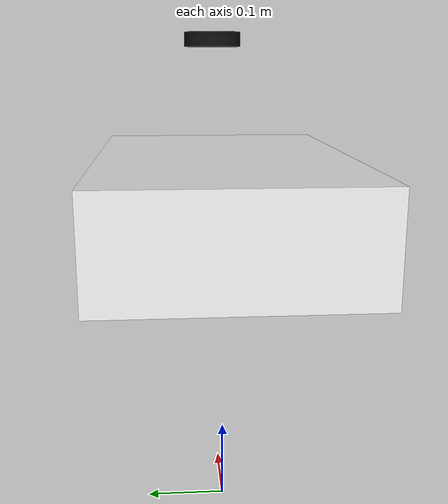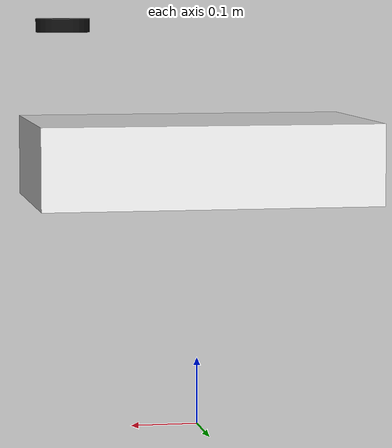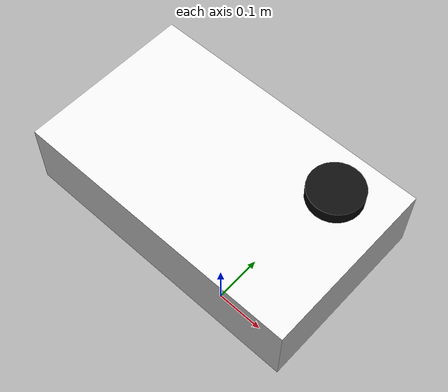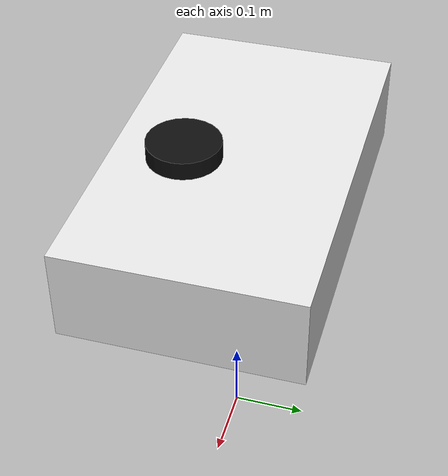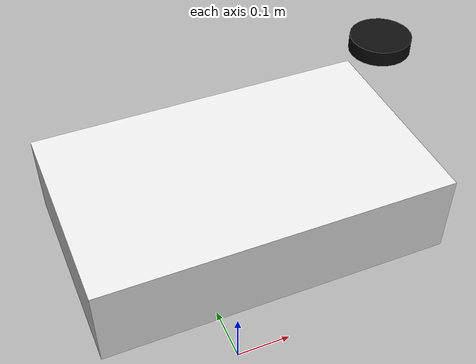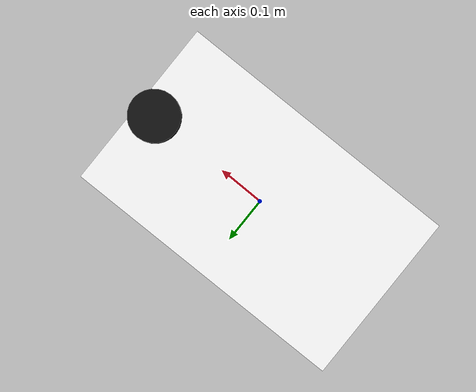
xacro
<?xml version="1.0"?>
<robot name="d1_ultra_stub" xmlns:xacro="http://www.ros.org/wiki/xacro">

  <xacro:include filename="$(find sensor_models)/urdf/l1_lidar.urdf.xacro"/>

  <!-- TODO(d1): Replace with D1 Ultra physical specs -->
  <xacro:property name="body_length"     value="0.50"/>
  <xacro:property name="body_width"      value="0.15"/>
  <xacro:property name="body_height"     value="0.12"/>
  <xacro:property name="body_mass"       value="15.0"/>
  <xacro:property name="standing_height" value="0.40"/>
  <xacro:property name="lidar_x"         value="0.20"/>
  <xacro:property name="lidar_y"         value="0.0"/>
  <xacro:property name="lidar_z"         value="0.20"/>

  <link name="base_footprint">
    <visual><geometry><box size="0.001 0.001 0.001"/></geometry></visual>
  </link>

  <joint name="base_footprint_to_base_link" type="fixed">
    <parent link="base_footprint"/>
    <child  link="base_link"/>
    <origin xyz="0 0 ${standing_height}" rpy="0 0 0"/>
  </joint>

  <link name="base_link">
    <visual>
      <geometry><box size="${body_length} ${body_width*2} ${body_height}"/></geometry>
      <material name="agibot_white"><color rgba="0.9 0.9 0.9 1.0"/></material>
    </visual>
    <collision>
      <geometry><box size="${body_length+0.05} ${body_width*2+0.1} ${body_height+0.04}"/></geometry>
    </collision>
    <inertial>
      <!-- TODO(d1): Replace with real D1 Ultra inertia tensor -->
      <origin xyz="0 0 0" rpy="0 0 0"/>
      <mass value="${body_mass}"/>
      <inertia ixx="0.1" ixy="0" ixz="0" iyy="0.3" iyz="0" izz="0.35"/>
    </inertial>
  </link>

  <joint name="base_link_to_imu" type="fixed">
    <parent link="base_link"/>
    <child  link="imu_link"/>
    <origin xyz="0 0 0" rpy="0 0 0"/>
  </joint>
  <link name="imu_link">
    <inertial><mass value="0.001"/><origin xyz="0 0 0" rpy="0 0 0"/>
      <inertia ixx="1e-7" ixy="0" ixz="0" iyy="1e-7" iyz="0" izz="1e-7"/>
    </inertial>
  </link>

  <!-- TODO(d1): Update sensor params to D1 LiDAR specs if different from L1 -->
  <xacro:l1_lidar parent="base_link" prefix="">
    <origin xyz="${lidar_x} ${lidar_y} ${lidar_z}" rpy="0 0 0"/>
  </xacro:l1_lidar>

  <gazebo reference="imu_link">
    <sensor name="d1_imu_sensor" type="imu">
      <always_on>1</always_on>
      <update_rate>200</update_rate>
      <topic>/imu/data</topic>
      <ignition_frame_id>imu_link</ignition_frame_id>
    </sensor>
  </gazebo>

</robot>

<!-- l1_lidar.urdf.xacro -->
<robot xmlns:xacro="http://www.ros.org/wiki/xacro">

  <xacro:macro name="l1_lidar" params="
      parent
      prefix
      range_min:=0.1
      range_max:=30.0
      *origin">

    <link name="${prefix}lidar_link">
      <visual>
        <origin xyz="0 0 0" rpy="0 0 0"/>
        <geometry>
          <cylinder radius="0.04" length="0.02"/>
        </geometry>
        <material name="lidar_black">
          <color rgba="0.05 0.05 0.05 1.0"/>
        </material>
      </visual>
      <collision>
        <origin xyz="0 0 0" rpy="0 0 0"/>
        <geometry>
          <cylinder radius="0.04" length="0.02"/>
        </geometry>
      </collision>
      <inertial>
        <mass value="0.5"/>
        <origin xyz="0 0 0" rpy="0 0 0"/>
        <inertia ixx="0.001" ixy="0" ixz="0" iyy="0.001" iyz="0" izz="0.001"/>
      </inertial>
    </link>

    <joint name="${prefix}lidar_l1_joint" type="fixed">
      <parent link="${parent}"/>
      <child link="${prefix}lidar_link"/>
      <xacro:insert_block name="origin"/>
    </joint>

    <gazebo reference="${prefix}lidar_link">
      <sensor name="${prefix}lidar_l1" type="gpu_lidar">
        <topic>/unilidar/cloud</topic>
        <update_rate>11</update_rate>
        <always_on>true</always_on>
        <visualize>true</visualize>
        <ignition_frame_id>${prefix}lidar_link</ignition_frame_id>
        <lidar>
          <scan>
            <horizontal>
              <!-- 360 deg sweep - L1 spec: 360 deg horizontal FOV -->
              <samples>360</samples>
              <resolution>1</resolution>
              <min_angle>-3.14159265358978</min_angle>
              <max_angle>3.14159265358979</max_angle>
            </horizontal>
            <vertical>
              <samples>36</samples>
              <resolution>1</resolution>
              <min_angle>-1.5</min_angle>
              <max_angle>0.1</max_angle>
            </vertical>
          </scan>
          <range>
            <!-- Fortress is stable here with a 0.1 m near clip. -->
            <min>${range_min}</min>
            <max>${range_max}</max>
            <resolution>0.01</resolution>
          </range>
          <noise>
            <type>gaussian</type>
            <mean>0.0</mean>
            <stddev>0.008</stddev>
          </noise>
        </lidar>
      </sensor>
    </gazebo>

  </xacro:macro>
</robot>
